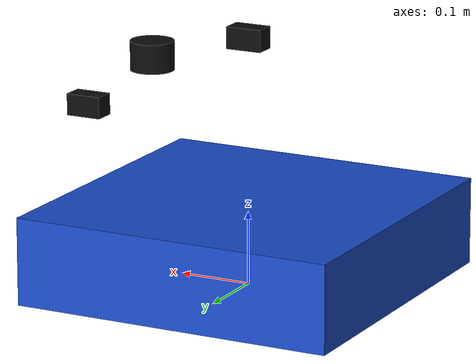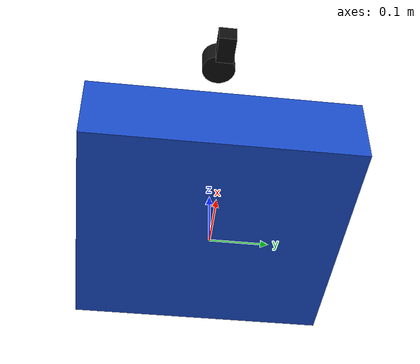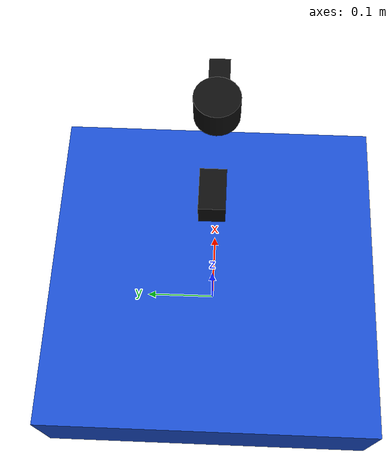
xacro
<?xml version="1.0"?>
<robot name="mm_base" xmlns:xacro="http://www.ros.org/wiki/xacro">
  <xacro:arg name="prefix" default="mm_base_"/>
  <xacro:arg name="scale" default="1.0"/>
  <xacro:arg name="controllers_file" default="$(find-pkg-share mm_bringup)/config/base_controllers.yaml"/>
  <xacro:arg name="enable_render_sensors" default="true"/>
  <xacro:arg name="enable_lidar" default="true"/>
  <xacro:arg name="enable_base_camera" default="true"/>
  <xacro:arg name="enable_nav_camera" default="true"/>
  <xacro:property name="prefix" value="$(arg prefix)"/>
  <xacro:property name="scale" value="$(arg scale)"/>
  <xacro:property name="controllers_file" value="$(arg controllers_file)"/>
  <xacro:property name="enable_render_sensors" value="$(arg enable_render_sensors)"/>
  <xacro:property name="enable_lidar" value="$(arg enable_lidar)"/>
  <xacro:property name="enable_base_camera" value="$(arg enable_base_camera)"/>
  <xacro:property name="enable_nav_camera" value="$(arg enable_nav_camera)"/>

  <!-- Dimensiones ajustables de la base (usar scale para iterar rápido). -->
  <xacro:property name="base_length" value="${0.45 * scale}"/>
  <xacro:property name="base_width" value="${0.45 * scale}"/>
  <xacro:property name="base_height" value="${0.12 * scale}"/>

  <xacro:property name="wheel_radius" value="${0.06 * scale}"/>
  <xacro:property name="wheel_width" value="${0.03 * scale}"/>

  <xacro:property name="wheel_x" value="${base_length / 2.0 - wheel_radius}"/>
  <xacro:property name="wheel_y" value="${base_width / 2.0 - wheel_radius}"/>
  <xacro:property name="wheel_z" value="${wheel_radius - base_height / 2.0}"/>

  <!-- Desplazamientos para montar los sensores. -->
  <xacro:property name="lidar_x" value="${base_length / 2.0 - 0.08 * scale}"/>
  <xacro:property name="lidar_z" value="${base_height / 2.0 + 0.18 * scale}"/>
  <xacro:property name="camera_x" value="${base_length / 2.0 + 0.02 * scale}"/>
  <xacro:property name="camera_z" value="${base_height / 2.0 + 0.10 * scale}"/>
  <xacro:property name="nav_camera_x" value="${0.0}"/>
  <xacro:property name="nav_camera_z" value="${base_height / 2.0 + 0.22 * scale}"/>
  <xacro:property name="nav_camera_fov" value="${1.047}"/>
  <xacro:property name="nav_camera_width" value="640"/>
  <xacro:property name="nav_camera_height" value="480"/>

  <xacro:macro name="simple_inertial" params="mass inertia">
    <inertial>
      <origin xyz="0 0 0" rpy="0 0 0"/>
      <mass value="${mass}"/>
      <inertia ixx="${inertia}" ixy="0" ixz="0" iyy="${inertia}" iyz="0" izz="${inertia}"/>
    </inertial>
  </xacro:macro>

  <link name="${prefix}base_footprint"/>

  <joint name="${prefix}base_footprint_joint" type="fixed">
    <parent link="${prefix}base_footprint"/>
    <child link="${prefix}base_link"/>
    <origin xyz="0 0 ${base_height / 2.0}" rpy="0 0 0"/>
  </joint>

  <link name="${prefix}base_link">
    <inertial>
      <origin xyz="0 0 0" rpy="0 0 0"/>
      <mass value="12.0"/>
      <inertia ixx="0.18" ixy="0" ixz="0" iyy="0.18" iyz="0" izz="0.22"/>
    </inertial>
    <visual>
      <origin xyz="0 0 0" rpy="0 0 0"/>
      <geometry>
        <box size="${base_length} ${base_width} ${base_height}"/>
      </geometry>
      <material name="BaseBlue">
        <color rgba="0.1 0.3 0.8 1.0"/>
      </material>
    </visual>
    <collision>
      <origin xyz="0 0 0" rpy="0 0 0"/>
      <geometry>
        <box size="${base_length} ${base_width} ${base_height}"/>
      </geometry>
    </collision>
  </link>

  <xacro:macro name="wheel" params="name x y">
    <link name="${prefix}${name}_wheel_link">
      <inertial>
        <origin xyz="0 0 0" rpy="0 0 0"/>
        <mass value="0.8"/>
        <inertia ixx="0.002" ixy="0" ixz="0" iyy="0.002" iyz="0" izz="0.002"/>
      </inertial>
      <visual>
        <origin xyz="0 0 0" rpy="${pi / 2} 0 0"/>
        <geometry>
          <cylinder radius="${wheel_radius}" length="${wheel_width}"/>
        </geometry>
        <material name="WheelGray">
          <color rgba="0.2 0.2 0.2 1.0"/>
        </material>
      </visual>
      <collision>
        <origin xyz="0 0 0" rpy="${pi / 2} 0 0"/>
        <geometry>
          <cylinder radius="${wheel_radius}" length="${wheel_width}"/>
        </geometry>
      </collision>
    </link>

    <joint name="${prefix}${name}_wheel_joint" type="continuous">
      <parent link="${prefix}base_link"/>
      <child link="${prefix}${name}_wheel_link"/>
      <origin xyz="${x} ${y} ${wheel_z}" rpy="0 0 0"/>
      <axis xyz="0 1 0"/>
      <dynamics damping="0.1" friction="0.0"/>
    </joint>
  </xacro:macro>

  <xacro:wheel name="front_left" x="${wheel_x}" y="${wheel_y}"/>
  <xacro:wheel name="front_right" x="${wheel_x}" y="${-wheel_y}"/>
  <xacro:wheel name="rear_left" x="${-wheel_x}" y="${wheel_y}"/>
  <xacro:wheel name="rear_right" x="${-wheel_x}" y="${-wheel_y}"/>

  <!-- Sensores -->
  <link name="${prefix}lidar_link">
    <xacro:simple_inertial mass="0.2" inertia="0.0005"/>
    <visual>
      <geometry>
        <cylinder radius="0.03" length="0.04"/>
      </geometry>
      <material name="LidarBlack">
        <color rgba="0.05 0.05 0.05 1.0"/>
      </material>
    </visual>
    <collision>
      <geometry>
        <cylinder radius="0.03" length="0.04"/>
      </geometry>
    </collision>
  </link>

  <joint name="${prefix}lidar_joint" type="fixed">
    <parent link="${prefix}base_link"/>
    <child link="${prefix}lidar_link"/>
    <origin xyz="${lidar_x} 0 ${lidar_z}" rpy="0 0 0"/>
  </joint>

  <link name="${prefix}camera_link">
    <xacro:simple_inertial mass="0.2" inertia="0.0005"/>
    <visual>
      <geometry>
        <box size="0.05 0.03 0.03"/>
      </geometry>
      <material name="CameraBlack">
        <color rgba="0.05 0.05 0.05 1.0"/>
      </material>
    </visual>
    <collision>
      <geometry>
        <box size="0.05 0.03 0.03"/>
      </geometry>
    </collision>
  </link>

  <joint name="${prefix}camera_joint" type="fixed">
    <parent link="${prefix}base_link"/>
    <child link="${prefix}camera_link"/>
    <origin xyz="${camera_x} 0 ${camera_z}" rpy="0 0 0"/>
  </joint>

  <link name="${prefix}imu_link">
    <xacro:simple_inertial mass="0.05" inertia="0.0001"/>
  </link>

  <joint name="${prefix}imu_joint" type="fixed">
    <parent link="${prefix}base_link"/>
    <child link="${prefix}imu_link"/>
    <origin xyz="0 0 ${base_height / 2.0}" rpy="0 0 0"/>
  </joint>

  <link name="${prefix}nav_camera_link">
    <xacro:simple_inertial mass="0.2" inertia="0.0005"/>
    <visual>
      <geometry>
        <box size="0.05 0.03 0.03"/>
      </geometry>
      <material name="CameraBlack">
        <color rgba="0.05 0.05 0.05 1.0"/>
      </material>
    </visual>
    <collision>
      <geometry>
        <box size="0.05 0.03 0.03"/>
      </geometry>
    </collision>
  </link>

  <joint name="${prefix}nav_camera_joint" type="fixed">
    <parent link="${prefix}base_link"/>
    <child link="${prefix}nav_camera_link"/>
    <origin xyz="${nav_camera_x} 0 ${nav_camera_z}" rpy="0 0 0"/>
  </joint>

  <!-- ros2_control para la base mecanum -->
  <ros2_control name="mm_base_system" type="system">
    <hardware>
      <plugin>gz_ros2_control/GazeboSimSystem</plugin>
    </hardware>

    <joint name="${prefix}front_left_wheel_joint">
      <command_interface name="velocity"/>
      <state_interface name="position"/>
      <state_interface name="velocity"/>
    </joint>
    <joint name="${prefix}front_right_wheel_joint">
      <command_interface name="velocity"/>
      <state_interface name="position"/>
      <state_interface name="velocity"/>
    </joint>
    <joint name="${prefix}rear_left_wheel_joint">
      <command_interface name="velocity"/>
      <state_interface name="position"/>
      <state_interface name="velocity"/>
    </joint>
    <joint name="${prefix}rear_right_wheel_joint">
      <command_interface name="velocity"/>
      <state_interface name="position"/>
      <state_interface name="velocity"/>
    </joint>
  </ros2_control>

  <gazebo>
    <plugin filename="libgz_ros2_control-system.so"
            name="gz_ros2_control::GazeboSimROS2ControlPlugin">
      <ros>
        <namespace>mm_base</namespace>
      </ros>
      <parameters>${controllers_file}</parameters>
      <controller_manager_name>controller_manager</controller_manager_name>
    </plugin>
  </gazebo>

  <xacro:if value="${enable_render_sensors and enable_lidar}">
    <gazebo reference="${prefix}lidar_link">
      <sensor name="lidar" type="gpu_lidar">
        <topic>/mm_base/scan</topic>
        <update_rate>10</update_rate>
        <ray>
          <scan>
            <horizontal>
              <samples>640</samples>
              <resolution>1</resolution>
              <min_angle>-1.396263</min_angle>
              <max_angle>1.396263</max_angle>
            </horizontal>
            <vertical>
              <samples>1</samples>
              <resolution>0.01</resolution>
              <min_angle>0</min_angle>
              <max_angle>0</max_angle>
            </vertical>
          </scan>
          <range>
            <min>0.10</min>
            <max>10.0</max>
            <resolution>0.01</resolution>
          </range>
        </ray>
        <always_on>1</always_on>
        <visualize>true</visualize>
      </sensor>
    </gazebo>
  </xacro:if>

  <xacro:if value="${enable_render_sensors and enable_base_camera}">
    <gazebo reference="${prefix}camera_link">
      <sensor name="camera" type="camera">
        <topic>/mm_base/camera</topic>
        <update_rate>30</update_rate>
        <always_on>1</always_on>
        <visualize>true</visualize>
        <camera>
          <horizontal_fov>1.047</horizontal_fov>
          <image>
            <width>640</width>
            <height>480</height>
            <format>R8G8B8</format>
          </image>
          <clip>
            <near>0.05</near>
            <far>50.0</far>
          </clip>
        </camera>
      </sensor>
    </gazebo>
  </xacro:if>

  <gazebo reference="${prefix}imu_link">
    <sensor name="imu" type="imu">
      <topic>/mm_base/imu</topic>
      <update_rate>100</update_rate>
      <always_on>1</always_on>
    </sensor>
  </gazebo>

  <xacro:if value="${enable_render_sensors and enable_nav_camera}">
    <gazebo reference="${prefix}nav_camera_link">
      <sensor name="nav_camera" type="camera">
        <topic>/mm_base/nav_camera</topic>
        <update_rate>15</update_rate>
        <always_on>1</always_on>
        <visualize>true</visualize>
        <camera>
          <horizontal_fov>${nav_camera_fov}</horizontal_fov>
          <image>
            <width>${nav_camera_width}</width>
            <height>${nav_camera_height}</height>
            <format>R8G8B8</format>
          </image>
          <clip>
            <near>0.1</near>
            <far>60.0</far>
          </clip>
        </camera>
      </sensor>
    </gazebo>
  </xacro:if>
</robot>
